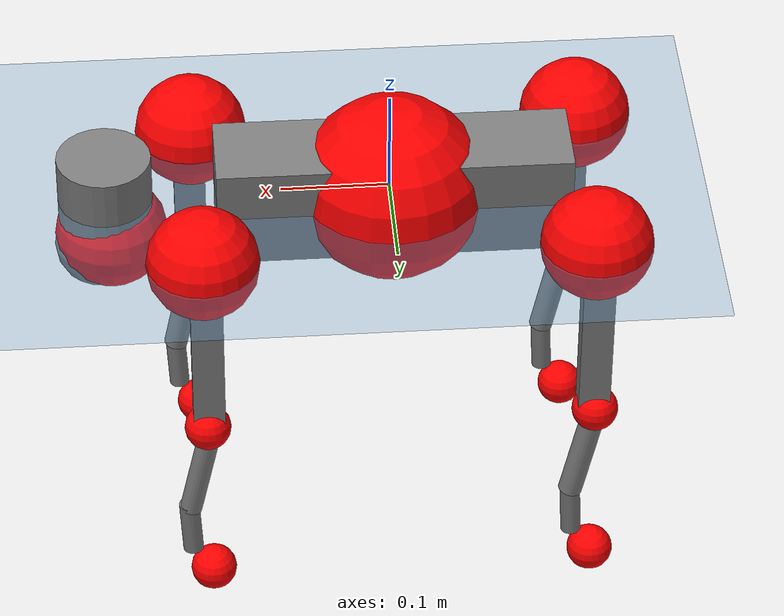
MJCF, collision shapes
<mujoco model="go2">
  <compiler angle="radian" assetdir="assets" balanceinertia="true" inertiafromgeom="false"/>

  <option timestep="0.005" density="1.2" viscosity="2e-05"/>

  <size nkey="1"/>

  <visual>
    <quality shadowsize="8192"/>
    <map shadowclip="0.5"/>
  </visual>

  <default>
    <default class="/">
      <geom contype="0" conaffinity="0" group="1" solref="-1000 -80"/>
      <site size="0.01 0.005 0.005" group="5"/>
      <general forcelimited="true" biastype="affine" gainprm="20" biasprm="0 -20 -0.5"/>
      <default class="go2">
        <joint armature="0.01" damping="0.01" frictionloss="0.2"/>
        <geom condim="1" margin="0.001"/>
        <default class="visual">
          <geom type="mesh" group="2"/>
        </default>
        <default class="collision">
          <geom group="3"/>
          <default class="foot">
            <geom size="0.022 0 0" condim="6" priority="1" friction="0.8 0.02 0.01" solimp="0.015 1 0.022"/>
          </default>
        </default>
        <default class="reward_collision_sphere">
          <geom group="5" rgba="1 0 0 1"/>
        </default>
      </default>
    </default>
  </default>

  <asset>
    <texture type="skybox" colorspace="auto" name="//unnamed_texture_0" builtin="gradient" rgb1="0.95 0.95 0.95" rgb2="0.95 0.95 0.95" width="100" height="600"/>
    <texture type="2d" colorspace="auto" name="texplane" builtin="checker" rgb1="0.345 0.575 0.748" rgb2="0.345 0.575 0.748" markrgb="1 1 1" width="512" height="512"/>
    <material name="MatPlane" class="/" texture="texplane" texuniform="true" texrepeat="2 2" specular="0.9"/>
    <material name="metal" class="/" rgba="0.9 0.95 0.95 1"/>
    <material name="black" class="/" rgba="0 0 0 1"/>
    <material name="white" class="/"/>
    <material name="gray" class="/" rgba="0.671705 0.692426 0.77427 1"/>
    <mesh name="base_0" class="/" file="base_0.obj"/>
    <mesh name="base_1" class="/" file="base_1.obj"/>
    <mesh name="base_2" class="/" file="base_2.obj"/>
    <mesh name="base_3" class="/" file="base_3.obj"/>
    <mesh name="base_4" class="/" file="base_4.obj"/>
    <mesh name="hip_0" class="/" file="hip_0.obj"/>
    <mesh name="hip_1" class="/" file="hip_1.obj"/>
    <mesh name="thigh_0" class="/" file="thigh_0.obj"/>
    <mesh name="thigh_1" class="/" file="thigh_1.obj"/>
    <mesh name="thigh_mirror_0" class="/" file="thigh_mirror_0.obj"/>
    <mesh name="thigh_mirror_1" class="/" file="thigh_mirror_1.obj"/>
    <mesh name="calf_0" class="/" file="calf_0.obj"/>
    <mesh name="calf_1" class="/" file="calf_1.obj"/>
    <mesh name="calf_mirror_0" class="/" file="calf_mirror_0.obj"/>
    <mesh name="calf_mirror_1" class="/" file="calf_mirror_1.obj"/>
    <mesh name="foot" class="/" file="foot.obj"/>
  </asset>

  <worldbody>
    <geom name="floor" class="/" size="100 100 0.125" type="plane" group="0" material="MatPlane"/>
    <light name="toplight_shadow" class="/" pos="0 0 5" dir="0.0990148 0.0990148 -0.990148" type="directional" ambient="0.04 0.04 0.04" diffuse="0.55 0.55 0.55" specular="0.12 0.12 0.12"/>
    <light name="toplight_fill" class="/" pos="0 0 5" dir="0.0990148 0.0990148 -0.990148" type="directional" castshadow="false" ambient="0.04 0.04 0.04" diffuse="0.3 0.3 0.3" specular="0.08 0.08 0.08"/>
    <body name="trunk" childclass="go2" pos="-0.00282454 -0.000991861 -0.00220864" quat="0.999999 0.00127893 -0.000433083 8.62225e-05">
      <inertial pos="0.0171882 0.00192937 -0.00548556" quat="0.00933859 0.718395 0.00464481 0.695557" mass="4.56902" diaginertia="0.0758104 0.0393495 0.0108345"/>
      <joint name="//unnamed_joint_0" type="free" armature="0" damping="0" frictionloss="0"/>
      <geom name="//unnamed_geom_1" class="visual" material="black" mesh="base_0"/>
      <geom name="//unnamed_geom_2" class="visual" material="black" mesh="base_1"/>
      <geom name="//unnamed_geom_3" class="visual" material="black" mesh="base_2"/>
      <geom name="//unnamed_geom_4" class="visual" material="white" mesh="base_3"/>
      <geom name="//unnamed_geom_5" class="visual" material="gray" mesh="base_4"/>
      <geom name="trunk_1" class="collision" size="0.163703 0.0406863 0.0496068" type="box"/>
      <geom name="trunk_2" class="collision" size="0.0435148 0.0391633" pos="0.26504 0 0.00847481" type="cylinder"/>
      <geom name="trunk_3" class="collision" size="0.0409039" pos="0.272479 0 -0.0508489"/>
      <geom name="//unnamed_geom_9" class="reward_collision_sphere" size="0.0870295"/>
      <geom name="//unnamed_geom_10" class="reward_collision_sphere" size="0.0522177" pos="0.26039 0 -0.0381366"/>
      <site name="imu" pos="-0.011546 -0.00717148 0.0302082" size="0.00870295"/>
      <camera name="track" pos="0 -1.66688 0" quat="0.707107 0.707107 0 0" mode="trackcom"/>
      <camera name="ego_camera" pos="0.290149 0 0.0381366" quat="-0.5 -0.5 0.5 0.5"/>
      <body name="FL_hip" pos="0.179336 0.0388637 -0.00155342" quat="0.999999 0.000867048 -0.000201308 0.000522756">
        <inertial pos="-0.00727015 0.000915637 -0.000224048" quat="0.48639 0.508275 0.507697 0.497318" mass="0.459869" diaginertia="0.00063256 0.000247067 0.000221712"/>
        <joint name="FL_hip_joint" pos="0 0 0" axis="0.99994 -0.00690582 0.00855504" stiffness="0.00482612" range="-1.00177 1.04678" armature="0.0100074" damping="0.00213474" frictionloss="0.182318"/>
        <geom name="//unnamed_geom_11" class="visual" material="metal" mesh="hip_0"/>
        <geom name="//unnamed_geom_12" class="visual" material="gray" mesh="hip_1"/>
        <geom name="//unnamed_geom_13" class="collision" size="0.0400336 0.0174059" pos="0 0.0666752 0" quat="0.707107 0.707107 0 0" type="cylinder"/>
        <geom name="//unnamed_geom_14" class="reward_collision_sphere" size="0.0522177" pos="0 0.0583408 0"/>
        <body name="FL_thigh" pos="-0.00116867 0.0794705 -0.000823257" quat="1 0.000129642 -2.8285e-05 0.000118676">
          <inertial pos="-0.00412841 -0.0206486 -0.0291255" quat="0.830084 0.0837845 -0.0184869 0.550998" mass="0.761721" diaginertia="0.00407043 0.00226368 0.00037871"/>
          <joint name="FL_thigh_joint" pos="0 0 0" axis="-0.00248365 0.99995 0.00968419" stiffness="0.0113988" range="-1.57142 3.52098" armature="0.00776326" damping="0.00305456" frictionloss="0.175261"/>
          <geom name="//unnamed_geom_15" class="visual" material="metal" mesh="thigh_0"/>
          <geom name="//unnamed_geom_16" class="visual" material="gray" mesh="thigh_1"/>
          <geom name="//unnamed_geom_17" class="collision" size="0.0926864 0.0106611 0.014795" pos="0 0 -0.0902567" quat="0.707107 0 0.707107 0" type="box"/>
          <body name="FL_calf" pos="0.00152021 0.00175697 -0.177956" quat="1 8.36068e-05 1.89912e-05 -0.000122552">
            <inertial pos="0.00530729 -0.00277505 -0.116901" quat="0.710071 0.00130259 -0.00434938 0.704115" mass="0.164332" diaginertia="0.00107709 0.000592752 2.3258e-05"/>
            <joint name="FL_calf_joint" pos="0 0 0" axis="-0.00810638 0.999857 -0.014858" stiffness="0.000367007" range="-2.6698 -0.8878" armature="0.00868243" damping="0.00374057" frictionloss="0.183372"/>
            <geom name="//unnamed_geom_18" class="visual" material="gray" mesh="calf_0"/>
            <geom name="//unnamed_geom_19" class="visual" material="black" mesh="calf_1"/>
            <geom name="FL_calf0" class="collision" size="0.0104435 0.0522177" pos="0.00743971 0 -0.0508489" quat="0.994493 0 -0.104807 0" type="cylinder"/>
            <geom name="//unnamed_geom_21" class="collision" size="0.00957325 0.0282846" pos="0.0185993 0 -0.125427" quat="0.999688 0 0.0249974 0" type="cylinder"/>
            <geom name="//unnamed_geom_22" class="visual" pos="0 0 -0.180513" quat="1 0 0 0" material="black" mesh="foot"/>
            <geom name="FL_foot" class="foot" size="0.0182138" pos="-0.00185993 0 -0.180513"/>
            <geom name="//unnamed_geom_24" class="reward_collision_sphere" size="0.0217574"/>
            <geom name="//unnamed_geom_25" class="reward_collision_sphere" size="0.0217574" pos="-0.00185993 0 -0.180513"/>
            <site name="FL_foot" class="foot" pos="-0.00185993 0 -0.180513" size="0.00870295"/>
          </body>
        </body>
      </body>
      <body name="FR_hip" pos="0.182572 -0.03608 0.00225058" quat="1 0.000199227 -6.85573e-05 9.58347e-05">
        <inertial pos="-0.0049775 -0.00427264 -0.000688803" quat="0.489597 0.505666 0.500422 0.504158" mass="0.458859" diaginertia="0.000612744 0.000250811 0.000213388"/>
        <joint name="FR_hip_joint" pos="0 0 0" axis="1 -0.000132436 -0.000818595" range="-0.991293 1.03314" armature="0.00880833" damping="0.0179707" frictionloss="0.181979"/>
        <geom name="//unnamed_geom_26" class="visual" pos="0 -1.22316e-10 -5.24637e-09" quat="4.63268e-05 1 0 0" material="metal" mesh="hip_0"/>
        <geom name="//unnamed_geom_27" class="visual" pos="0 -1.98288e-10 1.29763e-08" quat="4.63268e-05 1 0 0" material="gray" mesh="hip_1"/>
        <geom name="//unnamed_geom_28" class="collision" size="0.0400336 0.0174059" pos="0 -0.0666752 0" quat="0.707107 0.707107 0 0" type="cylinder"/>
        <geom name="//unnamed_geom_29" class="reward_collision_sphere" size="0.0522177" pos="0 -0.0583408 0"/>
        <body name="FR_thigh" pos="0.00246829 -0.0791389 -0.00205836" quat="1 -0.000275384 0.000163746 -0.000129208">
          <inertial pos="-0.00381006 0.018925 -0.0296914" quat="0.556714 -0.0214101 0.0859233 0.825971" mass="0.785677" diaginertia="0.00412561 0.00240817 0.000393939"/>
          <joint name="FR_thigh_joint" pos="0 0 0" axis="0.0025163 -0.999997 0.000662568" stiffness="0.00156329" range="-3.53276 1.62599" armature="0.00760262" damping="0.00983866" frictionloss="0.171799"/>
          <geom name="//unnamed_geom_30" class="visual" material="metal" mesh="thigh_mirror_0"/>
          <geom name="//unnamed_geom_31" class="visual" material="gray" mesh="thigh_mirror_1"/>
          <geom name="//unnamed_geom_32" class="collision" size="0.0926864 0.0106611 0.014795" pos="0 0 -0.0902567" quat="0.707107 0 0.707107 0" type="box"/>
          <body name="FR_calf" pos="-0.00116929 -0.00145659 -0.179814" quat="1 4.62342e-05 -2.61197e-05 3.29392e-05">
            <inertial pos="0.00533747 0.00111426 -0.118642" quat="0.709126 0.000362527 -0.00593888 0.705057" mass="0.151101" diaginertia="0.00104038 0.000590424 2.21865e-05"/>
            <joint name="FR_calf_joint" pos="0 0 0" axis="-0.000803107 -0.999983 0.00579895" range="0.845363 2.67515" armature="0.00999517" damping="0.0162731" frictionloss="0.175501"/>
            <geom name="//unnamed_geom_33" class="visual" material="gray" mesh="calf_mirror_0"/>
            <geom name="//unnamed_geom_34" class="visual" material="black" mesh="calf_mirror_1"/>
            <geom name="FR_calf0" class="collision" size="0.0113138 0.0522177" pos="0.00929964 0 -0.0508489" quat="0.995004 0 -0.0998334 0" type="cylinder"/>
            <geom name="//unnamed_geom_36" class="collision" size="0.00957325 0.0282846" pos="0.0185993 0 -0.125427" quat="0.999688 0 0.0249974 0" type="cylinder"/>
            <geom name="//unnamed_geom_37" class="visual" pos="0 0 -0.180513" quat="1 0 0 0" material="black" mesh="foot"/>
            <geom name="FR_foot" class="foot" size="0.0194724" pos="-0.00185993 0 -0.180513"/>
            <geom name="//unnamed_geom_39" class="reward_collision_sphere" size="0.0217574"/>
            <geom name="//unnamed_geom_40" class="reward_collision_sphere" size="0.0217574" pos="-0.00185993 0 -0.180513"/>
            <site name="FR_foot" class="foot" pos="-0.00185993 0 -0.180513" size="0.00870295"/>
          </body>
        </body>
      </body>
      <body name="RL_hip" pos="-0.179315 0.0362705 -0.000924324" quat="1 6.00964e-05 -5.10732e-05 0.000171604">
        <inertial pos="0.00541937 0.00299872 -0.00150772" quat="0.505691 0.496048 0.501141 0.497062" mass="0.466155" diaginertia="0.000643247 0.000234416 0.000210175"/>
        <joint name="RL_hip_joint" pos="0 0 0" axis="-0.999935 0.00353911 -0.0108327" range="-1.01366 1.09517" armature="0.00889162" damping="0" frictionloss="0.194956"/>
        <geom name="//unnamed_geom_41" class="visual" pos="-7.18558e-10 0 -1.40854e-07" quat="4.63268e-05 0 1 0" material="metal" mesh="hip_0"/>
        <geom name="//unnamed_geom_42" class="visual" pos="-1.16487e-09 0 -1.24917e-07" quat="4.63268e-05 0 1 0" material="gray" mesh="hip_1"/>
        <geom name="//unnamed_geom_43" class="collision" size="0.0400336 0.0174059" pos="0 0.0666752 0" quat="0.707107 0.707107 0 0" type="cylinder"/>
        <geom name="//unnamed_geom_44" class="reward_collision_sphere" size="0.0522177" pos="0 0.0583408 0"/>
        <body name="RL_thigh" pos="-0.000464948 0.0788651 0.00140814" quat="1 6.88952e-06 -1.62004e-06 -3.49252e-06">
          <inertial pos="-0.00599966 -0.0193869 -0.0292464" quat="0.833853 0.0830246 -0.0104938 0.545606" mass="0.781588" diaginertia="0.0041092 0.00239689 0.000380455"/>
          <joint name="RL_thigh_joint" pos="0 0 0" axis="0.0117734 0.99985 0.012669" range="-0.570608 4.54576" armature="0.00919358" damping="0" frictionloss="0.170161"/>
          <geom name="//unnamed_geom_45" class="visual" material="metal" mesh="thigh_0"/>
          <geom name="//unnamed_geom_46" class="visual" material="gray" mesh="thigh_1"/>
          <geom name="//unnamed_geom_47" class="collision" size="0.0926864 0.0106611 0.014795" pos="0 0 -0.0902567" quat="0.707107 0 0.707107 0" type="box"/>
          <body name="RL_calf" pos="-0.00215911 0.000869644 -0.183873" quat="1 -2.09067e-05 -0.000243349 0.000144328">
            <inertial pos="0.00818859 -0.00315535 -0.117114" quat="0.702944 0.00992704 -0.00637375 0.711148" mass="0.154059" diaginertia="0.00104106 0.000601776 2.30316e-05"/>
            <joint name="RL_calf_joint" pos="0 0 0" axis="0.000417304 1 -0.000364263" range="-2.70969 -0.836048" armature="0.00834659" damping="0.00297404" frictionloss="0.196396"/>
            <geom name="//unnamed_geom_48" class="visual" material="gray" mesh="calf_0"/>
            <geom name="//unnamed_geom_49" class="visual" material="black" mesh="calf_1"/>
            <geom name="RL_calf0" class="collision" size="0.0113138 0.0522177" pos="0.00929964 0 -0.0508489" quat="0.995004 0 -0.0998334 0" type="cylinder"/>
            <geom name="//unnamed_geom_51" class="collision" size="0.00957325 0.0282846" pos="0.0185993 0 -0.125427" quat="0.999688 0 0.0249974 0" type="cylinder"/>
            <geom name="//unnamed_geom_52" class="visual" pos="0 0 -0.180513" quat="1 0 0 0" material="black" mesh="foot"/>
            <geom name="RL_foot" class="foot" size="0.0189694" pos="-0.00185993 0 -0.180513"/>
            <geom name="//unnamed_geom_54" class="reward_collision_sphere" size="0.0217574"/>
            <geom name="//unnamed_geom_55" class="reward_collision_sphere" size="0.0217574" pos="-0.00185993 0 -0.180513"/>
            <site name="RL_foot" class="foot" pos="-0.00185993 0 -0.180513" size="0.00870295"/>
          </body>
        </body>
      </body>
      <body name="RR_hip" pos="-0.180038 -0.0403166 -0.000936843" quat="1 0.000384282 0.000644553 -0.000527551">
        <inertial pos="0.00501717 0.00107754 -0.00309143" quat="0.499812 0.496688 0.497879 0.505575" mass="0.446923" diaginertia="0.000607656 0.000236253 0.000205153"/>
        <joint name="RR_hip_joint" pos="0 0 0" axis="-0.999955 -0.00122726 -0.00942902" stiffness="0.00321999" range="-1.01835 0.992424" armature="0.0077149" damping="0.000471002" frictionloss="0.183542"/>
        <geom name="//unnamed_geom_56" class="visual" pos="7.15216e-10 -1.22316e-10 -1.35608e-07" quat="2.14617e-09 4.63268e-05 4.63268e-05 -1" material="metal" mesh="hip_0"/>
        <geom name="//unnamed_geom_57" class="visual" pos="1.17313e-09 -1.98288e-10 -1.37894e-07" quat="2.14617e-09 4.63268e-05 4.63268e-05 -1" material="gray" mesh="hip_1"/>
        <geom name="//unnamed_geom_58" class="collision" size="0.0400336 0.0174059" pos="0 -0.0666752 0" quat="0.707107 0.707107 0 0" type="cylinder"/>
        <geom name="//unnamed_geom_59" class="reward_collision_sphere" size="0.0522177" pos="0 -0.0583408 0"/>
        <body name="RR_thigh" pos="-0.000672871 -0.0795761 0.00152972" quat="1 1.84005e-05 8.63236e-05 -0.000171077">
          <inertial pos="-0.00597358 0.0215811 -0.0276825" quat="0.5512 -0.0210336 0.0859925 0.829663" mass="0.708361" diaginertia="0.00409263 0.00229825 0.000383861"/>
          <joint name="RR_thigh_joint" pos="0 0 0" axis="3.89713e-07 -1 4.28671e-05" stiffness="0.0105641" range="-4.57962 0.57204" armature="0.00882276" damping="0.015342" frictionloss="0.150458"/>
          <geom name="//unnamed_geom_60" class="visual" material="metal" mesh="thigh_mirror_0"/>
          <geom name="//unnamed_geom_61" class="visual" material="gray" mesh="thigh_mirror_1"/>
          <geom name="//unnamed_geom_62" class="collision" size="0.0926864 0.0106611 0.014795" pos="0 0 -0.0902567" quat="0.707107 0 0.707107 0" type="box"/>
          <body name="RR_calf" pos="0.00217601 -0.00022089 -0.181735" quat="1 -0.000217621 -0.000413782 0.000141315">
            <inertial pos="0.00669569 0.000405713 -0.119838" quat="0.705842 -0.00751962 0.00293414 0.708323" mass="0.148145" diaginertia="0.00100569 0.000574997 2.22196e-05"/>
            <joint name="RR_calf_joint" pos="0 0 0" axis="0.00321939 -0.999995 0.000146003" range="0.83997 2.77487" armature="0.00794995" damping="0.00965837" frictionloss="0.171059"/>
            <geom name="//unnamed_geom_63" class="visual" material="gray" mesh="calf_mirror_0"/>
            <geom name="//unnamed_geom_64" class="visual" material="black" mesh="calf_mirror_1"/>
            <geom name="RR_calf0" class="collision" size="0.0113138 0.0522177" pos="0.00929964 0 -0.0508489" quat="0.995004 0 -0.0998334 0" type="cylinder"/>
            <geom name="//unnamed_geom_66" class="collision" size="0.00957325 0.0282846" pos="0.0185993 0 -0.125427" quat="0.999688 0 0.0249974 0" type="cylinder"/>
            <geom name="//unnamed_geom_67" class="visual" pos="0 0 -0.180513" quat="1 0 0 0" material="black" mesh="foot"/>
            <geom name="RR_foot" class="foot" size="0.0189314" pos="-0.00185993 0 -0.180513"/>
            <geom name="//unnamed_geom_69" class="reward_collision_sphere" size="0.0217574"/>
            <geom name="//unnamed_geom_70" class="reward_collision_sphere" size="0.0217574" pos="-0.00185993 0 -0.180513"/>
            <site name="RR_foot" class="foot" pos="-0.00185993 0 -0.180513" size="0.00870295"/>
          </body>
        </body>
      </body>
    </body>
  </worldbody>

  <contact>
    <pair class="/" geom1="floor" geom2="FL_foot" name="//unnamed_contact_0"/>
    <pair class="/" geom1="floor" geom2="FR_foot" name="//unnamed_contact_1"/>
    <pair class="/" geom1="floor" geom2="RL_foot" name="//unnamed_contact_2"/>
    <pair class="/" geom1="floor" geom2="RR_foot" name="//unnamed_contact_3"/>
  </contact>

  <actuator>
    <general name="FL_hip" class="/" joint="FL_hip_joint" forcerange="-19.887 19.887" gainprm="17.2219" biasprm="0 -17.2219 -0.465831"/>
    <general name="FL_thigh" class="/" joint="FL_thigh_joint" forcerange="-22.6541 22.6541" gainprm="17.2219" biasprm="0 -17.2219 -0.465831"/>
    <general name="FL_calf" class="/" joint="FL_calf_joint" forcerange="-36.0571 36.0571" gainprm="17.2219" biasprm="0 -17.2219 -0.465831"/>
    <general name="FR_hip" class="/" joint="FR_hip_joint" forcerange="-19.8116 19.8116" gainprm="17.2219" biasprm="0 -17.2219 -0.465831"/>
    <general name="FR_thigh" class="/" joint="FR_thigh_joint" forcerange="-22.553 22.553" gainprm="17.2219" biasprm="0 -17.2219 -0.465831"/>
    <general name="FR_calf" class="/" joint="FR_calf_joint" forcerange="-40.4034 40.4034" gainprm="17.2219" biasprm="0 -17.2219 -0.465831"/>
    <general name="RL_hip" class="/" joint="RL_hip_joint" forcerange="-22.2362 22.2362" gainprm="17.2219" biasprm="0 -17.2219 -0.465831"/>
    <general name="RL_thigh" class="/" joint="RL_thigh_joint" forcerange="-22.3148 22.3148" gainprm="17.2219" biasprm="0 -17.2219 -0.465831"/>
    <general name="RL_calf" class="/" joint="RL_calf_joint" forcerange="-38.7415 38.7415" gainprm="17.2219" biasprm="0 -17.2219 -0.465831"/>
    <general name="RR_hip" class="/" joint="RR_hip_joint" forcerange="-20.9019 20.9019" gainprm="17.2219" biasprm="0 -17.2219 -0.465831"/>
    <general name="RR_thigh" class="/" joint="RR_thigh_joint" forcerange="-19.4325 19.4325" gainprm="17.2219" biasprm="0 -17.2219 -0.465831"/>
    <general name="RR_calf" class="/" joint="RR_calf_joint" forcerange="-35.3633 35.3633" gainprm="17.2219" biasprm="0 -17.2219 -0.465831"/>
  </actuator>

  <sensor>
    <gyro site="imu" name="imu_angular_velocity"/>
    <velocimeter site="imu" name="imu_linear_velocity"/>
    <framelinvel objtype="site" objname="FL_foot" name="FL_foot_global_linear_velocity"/>
    <framelinvel objtype="site" objname="FR_foot" name="FR_foot_global_linear_velocity"/>
    <framelinvel objtype="site" objname="RL_foot" name="RL_foot_global_linear_velocity"/>
    <framelinvel objtype="site" objname="RR_foot" name="RR_foot_global_linear_velocity"/>
  </sensor>

  <keyframe>
    <key name="home" qpos="0 0 0.325 1 0 0 0 0.1 0.8 -1.5 -0.1 -0.8 1.5 -0.1 0.8 -1.5 0.1 -0.8 1.5"/>
  </keyframe>
</mujoco>
